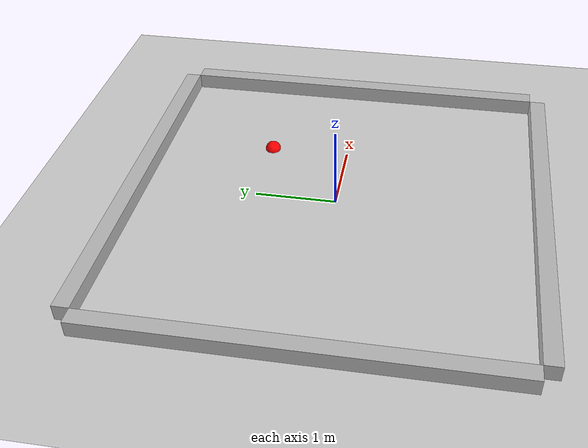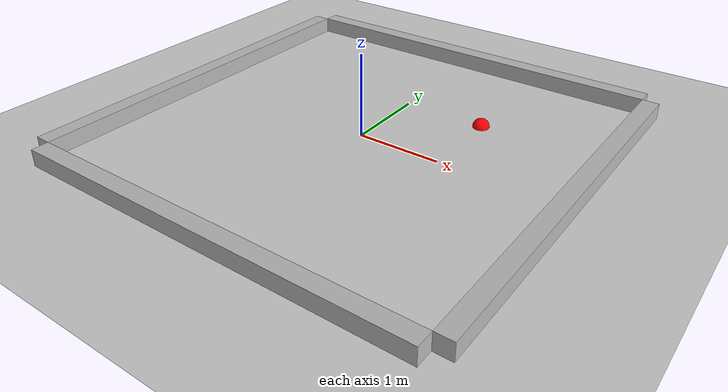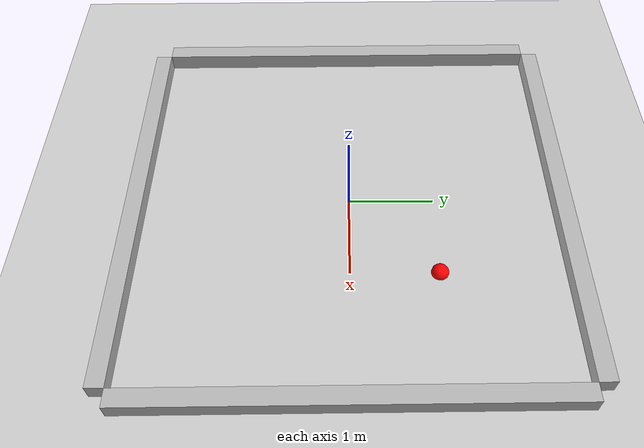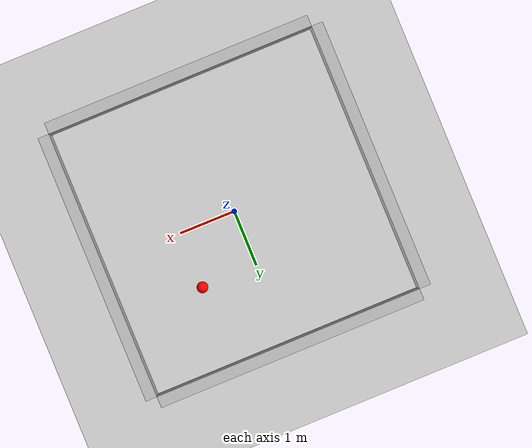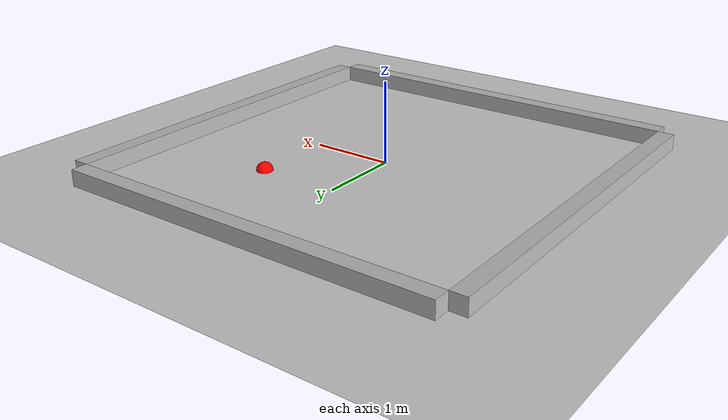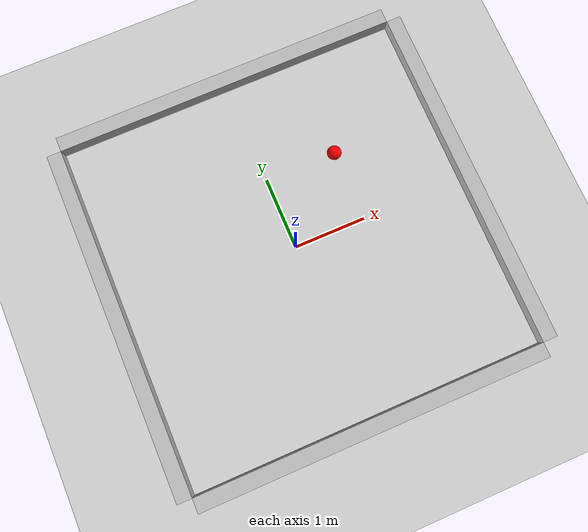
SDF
<sdf version="1.5">
 <world name="default">
  <physics type="ode">
   <max_step_size>0.001</max_step_size>
   <real_time_factor>1</real_time_factor>
   <real_time_update_rate>0</real_time_update_rate>
  </physics>
  <include><uri>model://texture_ground_plane</uri></include>
  <include><uri>model://sun</uri></include>
  <model name="goal">
   <pose>1 1 0 0 0 0</pose>
   <link name="link">
    <collision name="collision"><geometry><sphere><radius>0.1</radius></sphere></geometry></collision>
    <visual name="visual">
     <material>
      <ambient>0.5 0 0 1.0</ambient>
      <diffuse>1.0 0 0 1.0</diffuse>
      <specular>1.0 1.0 1.0 1.0</specular>
     </material>
     <geometry><sphere><radius>0.1</radius></sphere></geometry>
    </visual>
   </link>
  </model>
  <model name="south_wall">
   <static>1</static>
   <pose>2.5 0 0.1 0 0 0</pose>
   <link name="link">
    <collision name="collision"><geometry><box><size>0.2 4.8 0.2</size></box></geometry></collision>
    <visual name="visual"><geometry><box><size>0.2 4.8 0.2</size></box></geometry></visual>
   </link>
  </model>
  <model name="north_wall">
   <static>1</static>
   <pose>-2.5 0 0.1 0 0 0</pose>
   <link name="link">
    <collision name="collision"><geometry><box><size>0.2 4.8 0.2</size></box></geometry></collision>
    <visual name="visual"><geometry><box><size>0.2 4.8 0.2</size></box></geometry></visual>
   </link>
  </model>
  <model name="east_wall">
   <static>1</static>
   <pose>0 2.5 0.1 0 0 0</pose>
   <link name="link">
    <collision name="collision"><geometry><box><size>4.8 0.2 0.2</size></box></geometry></collision>
    <visual name="visual"><geometry><box><size>4.8 0.2 0.2</size></box></geometry></visual>
   </link>
  </model>
  <model name="west_wall">
   <static>1</static>
   <pose>0 -2.5 0.1 0 0 0</pose>
   <link name="link">
    <collision name="collision"><geometry><box><size>4.8 0.2 0.2</size></box></geometry></collision>
    <visual name="visual"><geometry><box><size>4.8 0.2 0.2</size></box></geometry></visual>
   </link>
  </model>
 </world>
</sdf>

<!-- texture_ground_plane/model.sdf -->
<sdf version="1.5">
  <model name="ground_plane">
    <static>true</static>
    <link name="link">
      <collision name="collision">
        <geometry>
          <plane>
            <normal>0 0 1</normal>
            <size>100 100</size>
          </plane>
        </geometry>
        <surface>
          <friction>
            <ode>
              <mu>100</mu>
              <mu2>50</mu2>
            </ode>
          </friction>
        </surface>
      </collision>
      <visual name="visual">
        <cast_shadows>false</cast_shadows>
        <geometry>
          <plane>
            <normal>0 0 1</normal>
            <size>100 100</size>
          </plane>
        </geometry>
        <material>
          <script>
            <uri>model://texture_ground_plane/materials/scripts/texture_ground_plane.material</uri>
            <uri>model://texture_ground_plane/materials/textures/ground_texture.png</uri>
            <name>TextureGroundPlane/Image</name>
          </script>
        </material>
      </visual>
    </link>
  </model>
</sdf>
